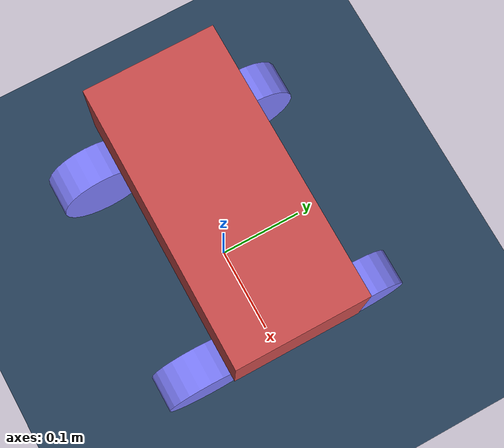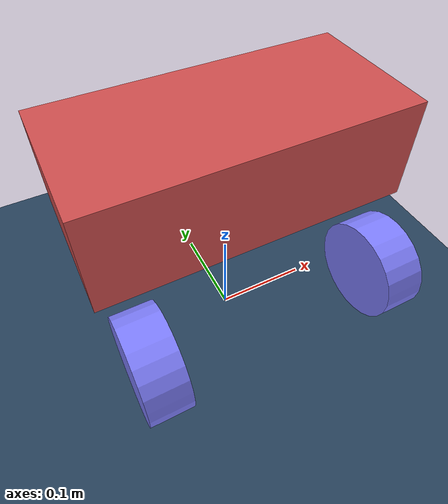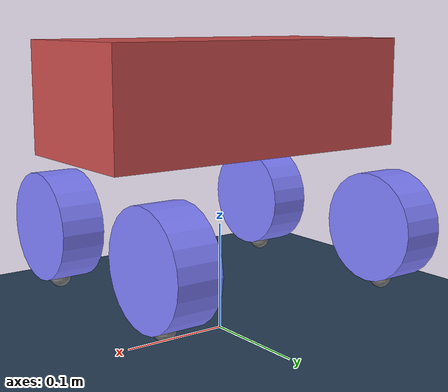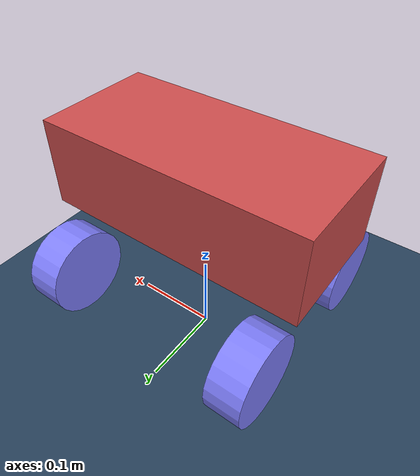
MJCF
<mujoco>
  <compiler autolimits="true" inertiafromgeom="true" boundmass="0.1" boundinertia="0.01"/>
  <option timestep="0.001" impratio="10" density="1000"/>

  <asset>
    <texture name="grid" type="2d" builtin="checker" width="512" height="512"
             rgb1=".1 .2 .3" rgb2=".2 .3 .4"/>
    <material name="grid" texture="grid" texrepeat="1 1" texuniform="true" reflectance=".2"/>
  </asset>

  <default>
    <joint damping="1" stiffness="0" armature="0.1"/>
    <geom friction="2 0.1 0.01" condim="4" solimp="0.9 0.95 0.001" solref="0.02 1"/>

    <default class="wheel">
      <geom type="cylinder" size="0.05 0.02" rgba=".5 .5 1 1" mass="3.0"/>
    </default>
  </default>

  <worldbody>
    <light name="top" pos="0 0 4" directional="true" castshadow="true"/>
    <geom name="ground" type="plane" size="5 5 0.1" material="grid" friction="2"/>

    <body name="car" pos="0 0 0.1">
      <freejoint/>
      <inertial pos="0 0 0" mass="20" diaginertia="1 1 1"/>

      <geom name="chassis_vis" type="box" size="0.15 0.07 0.05" pos="0 0 0.12"
            rgba="0.8 0.3 0.3 1" contype="0" conaffinity="0" mass="0.001"/>

      <!-- Передние колеса -->
      <body name="front_left" pos="0.12 0.09 0">
        <joint name="steer_left" type="hinge" axis="0 1 0" range="-0.6 0.6" damping="2"/> <!-- Изменил ось на Y -->
        <body>
          <joint name="spin_left" type="hinge" axis="0 0 1"/> <!-- Изменил ось на Z -->
          <geom class="wheel" euler="0 90 0"/> <!-- Поворот на 90° вокруг Y -->
          <site name="fl_contact" type="sphere" size="0.01" pos="0 0 -0.05"/>
        </body>
      </body>

      <body name="front_right" pos="0.12 -0.09 0">
        <joint name="steer_right" type="hinge" axis="0 1 0" range="-0.6 0.6" damping="2"/> <!-- Изменил ось на Y -->
        <body>
          <joint name="spin_right" type="hinge" axis="0 0 1"/> <!-- Изменил ось на Z -->
          <geom class="wheel" euler="0 90 0"/> <!-- Поворот на 90° вокруг Y -->
          <site name="fr_contact" type="sphere" size="0.01" pos="0 0 -0.05"/>
        </body>
      </body>

      <!-- Задние колеса -->
      <body name="rear_left" pos="-0.12 0.09 0">
        <joint name="drive_left" type="hinge" axis="0 0 1" damping="0.5"/> <!-- Ось вращения Z -->
        <geom class="wheel" euler="0 90 0"/> <!-- Поворот на 90° вокруг Y -->
        <site name="rl_contact" type="sphere" size="0.01" pos="0 0 -0.05"/>
      </body>

      <body name="rear_right" pos="-0.12 -0.09 0">
        <joint name="drive_right" type="hinge" axis="0 0 1" damping="0.5"/> <!-- Ось вращения Z -->
        <geom class="wheel" euler="0 90 0"/> <!-- Поворот на 90° вокруг Y -->
        <site name="rr_contact" type="sphere" size="0.01" pos="0 0 -0.05"/>
      </body>
    </body>
  </worldbody>

  <tendon>
    <fixed name="drive_tendon">
      <joint joint="drive_left" coef="1"/>
      <joint joint="drive_right" coef="1"/>
    </fixed>

    <fixed name="steer_tendon">
      <joint joint="steer_left" coef="1"/>
      <joint joint="steer_right" coef="-1"/> <!-- Зеркальный поворот -->
    </fixed>
  </tendon>

  <actuator>
    <motor name="drive" tendon="drive_tendon" gear="100"
           ctrlrange="-2 2" forcerange="-500 500" ctrllimited="true"/>
    <motor name="steering" tendon="steer_tendon" gear="50"
           ctrlrange="-0.6 0.6" forcerange="-50 50" ctrllimited="true"/>
  </actuator>
</mujoco>
